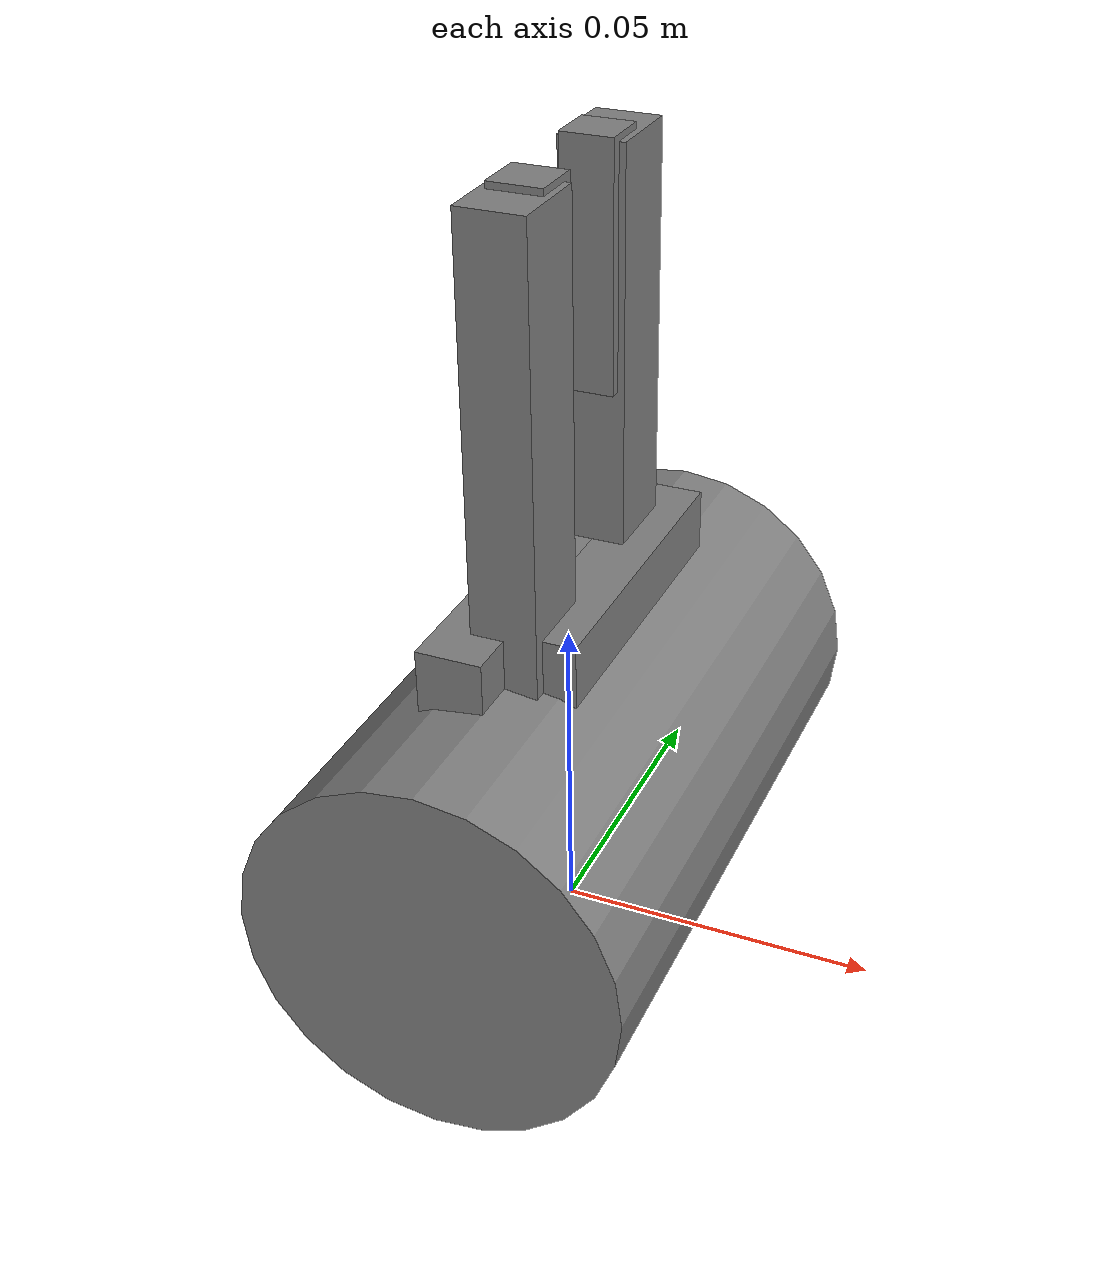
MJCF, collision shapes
<mujoco model="base">
    <asset>
        <mesh name="electric_gripper_base" file="electric_gripper/electric_gripper_base.STL" />
        <mesh name="standard_narrow" file="electric_gripper/fingers/standard_narrow.STL" />
        <mesh name="half_round_tip" file="electric_gripper/fingers/half_round_tip.STL" />
    </asset>

    <actuator>
        <position ctrllimited="true" ctrlrange="0 0.020833" joint="r_gripper_r_finger_joint" kp="10000" name="r_gripper_r_finger_joint" forcelimited="true" forcerange="-20 20"/>
        <position ctrllimited="true" ctrlrange="-0.020833 0" joint="r_gripper_l_finger_joint" kp="10000" name="r_gripper_l_finger_joint" forcelimited="true" forcerange="-20 20"/>
    </actuator>

    <worldbody>
        <inertial pos="1e-08 1e-08 1e-08" quat="0.820473 0.339851 -0.17592 0.424708" mass="1e-08" diaginertia="1e-08 1e-08 1e-08" />
        <geom size="1e-08 5e-09" type="cylinder" />
        <body name="right_gripper_base" pos="0 0 0.025">
            <inertial pos="0 0 0" quat="-0.5 0.5 0.5 0.5" mass="0.3" diaginertia="3e-08 2e-08 2e-08" />
            <geom quat="0 0 0.707107 0.707107" type="mesh" contype="0" conaffinity="0" group="1" mesh="electric_gripper_base" />
            <geom size="0.029 0.05" quat="0 0 0.707107 0.707107" type="cylinder" />
            <body name="right_gripper" pos="0 0 0.095">
                <inertial pos="0 0 0" mass="0.0001" diaginertia="0 0 0" />
            </body>
            <body name="r_gripper_l_finger" pos="0 -0.0015 0.02">
                <inertial pos="0 0 0" quat="0 0 0 -1" mass="0.02" diaginertia="0.01 0.01 0.01" />
                <joint name="r_gripper_l_finger_joint" pos="0 0 0" axis="0 1 0" type="slide" limited="true" range="0 0.020833" damping="0.7"/>
                <geom quat="0 0 0 -1" type="mesh" contype="0" conaffinity="0" group="1" mesh="standard_narrow" />
                <geom size="0.005 0.00675 0.0375" pos="0 0.01725 0.04" quat="0 0 0 -1" type="box" />
                <geom size="0.005 0.025 0.0085" pos="-0.005 -0.003 0.0083" quat="0 0 0 -1" type="box" />
                <body name="r_gripper_l_finger_tip" pos="0 0.01725 0.075">
                    <inertial pos="0 0 0" quat="0 0 0 1" mass="0.01" diaginertia="0.01 0.01 0.01" />
                    <geom quat="0 0 0 1" type="mesh" contype="0" conaffinity="0" group="1" mesh="half_round_tip" />
                    <geom size="0.004 0.004 0.0185" pos="0 -0.0045 -0.015" quat="0 0 0 1" type="box" />
                </body>
            </body>
            <body name="r_gripper_r_finger" pos="0 0.0015 0.02">
                <inertial pos="0 0 0" mass="0.02" diaginertia="0.01 0.01 0.01" />
                <joint name="r_gripper_r_finger_joint" pos="0 0 0" axis="0 1 0" type="slide" limited="true" range="-0.020833 0" damping="0.7"/>
                <geom type="mesh" contype="0" conaffinity="0" group="1" mesh="standard_narrow" />
                <geom size="0.005 0.00675 0.0375" pos="0 -0.01725 0.04" type="box" />
                <geom size="0.005 0.025 0.0085" pos="0.005 0.003 0.0083" type="box" />
                <body name="r_gripper_r_finger_tip" pos="0 -0.01725 0.075">
                    <inertial pos="0 0 0" mass="0.01" diaginertia="0.01 0.01 0.01" />
                    <geom type="mesh" contype="0" conaffinity="0" group="1" mesh="half_round_tip" />
                    <geom size="0.004 0.004 0.0185" pos="0 0.0045 -0.015" type="box" />
                </body>
            </body>
        </body>
    </worldbody>
</mujoco>
